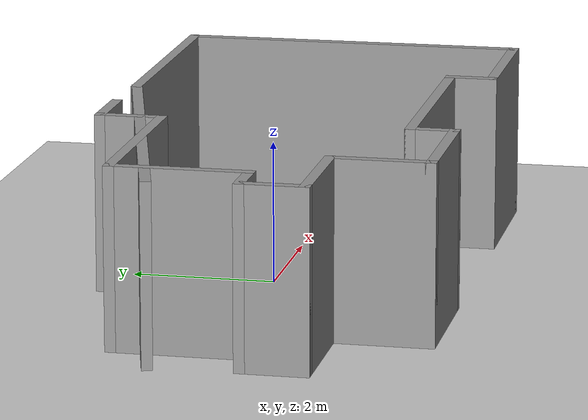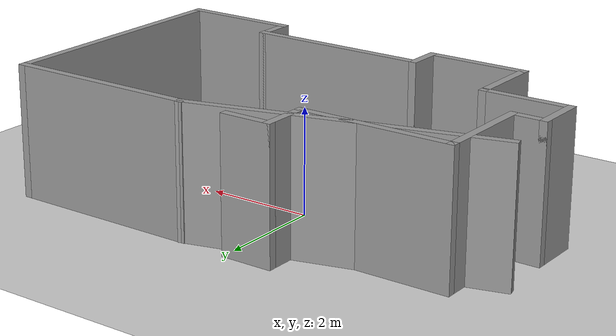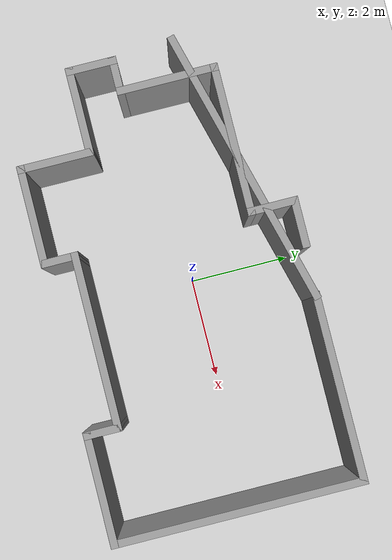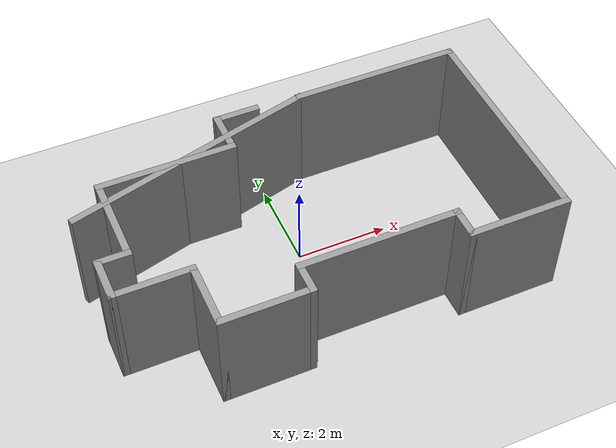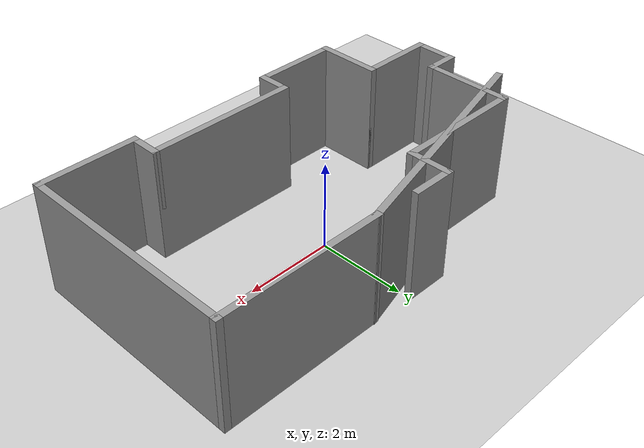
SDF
<sdf version="1.6">
 <world name="default">
  <light name="sun" type="directional">
   <pose>0 0 10 0 -0 0</pose>
   <diffuse>0.8 0.8 0.8 1</diffuse>
   <specular>0.2 0.2 0.2 1</specular>
   <attenuation>
    <range>1000</range>
    <constant>0.9</constant>
    <linear>0.01</linear>
    <quadratic>0.001</quadratic>
   </attenuation>
   <direction>-0.5 0.1 -0.9</direction>
  </light>
  <model name="ground_plane">
   <static>1</static>
   <link name="link">
    <collision name="collision">
     <geometry><plane><normal>0 0 1</normal><size>100 100</size></plane></geometry>
     <surface><friction><ode><mu>100</mu><mu2>50</mu2></ode></friction></surface>
    </collision>
    <visual name="visual">
     <cast_shadows>0</cast_shadows>
     <geometry><plane><normal>0 0 1</normal><size>100 100</size></plane></geometry>
     <material>
      <script><uri>file://media/materials/scripts/gazebo.material</uri><name>Gazebo/Grey</name></script>
     </material>
    </visual>
   </link>
  </model>
  <gravity>0 0 -9.8</gravity>
  <magnetic_field>6e-06 2.3e-05 -4.2e-05</magnetic_field>
  <atmosphere type="adiabatic"/>
  <physics name="default_physics" default="0" type="ode">
   <max_step_size>0.001</max_step_size>
   <real_time_factor>1</real_time_factor>
   <real_time_update_rate>1000</real_time_update_rate>
  </physics>
  <scene><ambient>0.4 0.4 0.4 1</ambient><background>0.7 0.7 0.7 1</background><shadows>1</shadows></scene>
  <spherical_coordinates>
   <surface_model>EARTH_WGS84</surface_model>
   <latitude_deg>0</latitude_deg>
   <longitude_deg>0</longitude_deg>
   <elevation>0</elevation>
   <heading_deg>0</heading_deg>
  </spherical_coordinates>
  <model name="paredes_ok">
   <pose>0.036626 -0.224927 0 0 -0 0</pose>
   <link name="Wall_0">
    <collision name="Wall_0_Collision">
     <geometry><box><size>1 0.15 2.5</size></box></geometry>
     <pose>0 0 1.25 0 -0 0</pose>
    </collision>
    <visual name="Wall_0_Visual">
     <pose>0 0 1.25 0 -0 0</pose>
     <geometry><box><size>1 0.15 2.5</size></box></geometry>
     <material>
      <script><uri>file://media/materials/scripts/gazebo.material</uri><name>Gazebo/Grey</name></script>
      <ambient>1 1 1 1</ambient>
     </material>
     <meta><layer>0</layer></meta>
    </visual>
    <pose>-0.51198 2.45 0 0 -0 3.14159</pose>
   </link>
   <link name="Wall_1">
    <collision name="Wall_1_Collision">
     <geometry><box><size>1 0.15 2.5</size></box></geometry>
     <pose>0 0 1.25 0 -0 0</pose>
    </collision>
    <visual name="Wall_1_Visual">
     <pose>0 0 1.25 0 -0 0</pose>
     <geometry><box><size>1 0.15 2.5</size></box></geometry>
     <material>
      <script><uri>file://media/materials/scripts/gazebo.material</uri><name>Gazebo/Grey</name></script>
      <ambient>1 1 1 1</ambient>
     </material>
     <meta><layer>0</layer></meta>
    </visual>
    <pose>-0.93698 2.025 0 0 0 -1.5708</pose>
   </link>
   <link name="Wall_10">
    <collision name="Wall_10_Collision">
     <geometry><box><size>3.5 0.15 2.5</size></box></geometry>
     <pose>0 0 1.25 0 -0 0</pose>
    </collision>
    <visual name="Wall_10_Visual">
     <pose>0 0 1.25 0 -0 0</pose>
     <geometry><box><size>3.5 0.15 2.5</size></box></geometry>
     <material>
      <script><uri>file://media/materials/scripts/gazebo.material</uri><name>Gazebo/Grey</name></script>
      <ambient>1 1 1 1</ambient>
     </material>
     <meta><layer>0</layer></meta>
    </visual>
    <pose>0.73802 -1.85 0 0 -0 0</pose>
   </link>
   <link name="Wall_11">
    <collision name="Wall_11_Collision">
     <geometry><box><size>0.75 0.15 2.5</size></box></geometry>
     <pose>0 0 1.25 0 -0 0</pose>
    </collision>
    <visual name="Wall_11_Visual">
     <pose>0 0 1.25 0 -0 0</pose>
     <geometry><box><size>0.75 0.15 2.5</size></box></geometry>
     <material>
      <script><uri>file://media/materials/scripts/gazebo.material</uri><name>Gazebo/Grey</name></script>
      <ambient>1 1 1 1</ambient>
     </material>
     <meta><layer>0</layer></meta>
    </visual>
    <pose>2.41302 -2.15 0 0 0 -1.5708</pose>
   </link>
   <link name="Wall_12">
    <collision name="Wall_12_Collision">
     <geometry><box><size>2.25 0.15 2.5</size></box></geometry>
     <pose>0 0 1.25 0 -0 0</pose>
    </collision>
    <visual name="Wall_12_Visual">
     <pose>0 0 1.25 0 -0 0</pose>
     <geometry><box><size>2.25 0.15 2.5</size></box></geometry>
     <material>
      <script><uri>file://media/materials/scripts/gazebo.material</uri><name>Gazebo/Grey</name></script>
      <ambient>1 1 1 1</ambient>
     </material>
     <meta><layer>0</layer></meta>
    </visual>
    <pose>3.46302 -2.45 0 0 -0 0</pose>
   </link>
   <link name="Wall_13">
    <collision name="Wall_13_Collision">
     <geometry><box><size>5 0.15 2.5</size></box></geometry>
     <pose>0 0 1.25 0 -0 0</pose>
    </collision>
    <visual name="Wall_13_Visual">
     <pose>0 0 1.25 0 -0 0</pose>
     <geometry><box><size>5 0.15 2.5</size></box></geometry>
     <material>
      <script><uri>file://media/materials/scripts/gazebo.material</uri><name>Gazebo/Grey</name></script>
      <ambient>1 1 1 1</ambient>
     </material>
     <meta><layer>0</layer></meta>
    </visual>
    <pose>4.51302 -0.025 0 0 -0 1.5708</pose>
   </link>
   <link name="Wall_14">
    <collision name="Wall_14_Collision">
     <geometry><box><size>3.75 0.15 2.5</size></box></geometry>
     <pose>0 0 1.25 0 -0 0</pose>
    </collision>
    <visual name="Wall_14_Visual">
     <pose>0 0 1.25 0 -0 0</pose>
     <geometry><box><size>3.75 0.15 2.5</size></box></geometry>
     <material>
      <script><uri>file://media/materials/scripts/gazebo.material</uri><name>Gazebo/Grey</name></script>
      <ambient>1 1 1 1</ambient>
     </material>
     <meta><layer>0</layer></meta>
    </visual>
    <pose>2.71302 2.4 0 0 -0 3.14159</pose>
   </link>
   <link name="Wall_15">
    <collision name="Wall_15_Collision">
     <geometry><box><size>5.75 0.15 2.5</size></box></geometry>
     <pose>0 0 1.25 0 -0 0</pose>
    </collision>
    <visual name="Wall_15_Visual">
     <pose>0 0 1.25 0 -0 0</pose>
     <geometry><box><size>5.75 0.15 2.5</size></box></geometry>
     <material>
      <script><uri>file://media/materials/scripts/gazebo.material</uri><name>Gazebo/Grey</name></script>
      <ambient>0 0 0 0</ambient>
     </material>
     <meta><layer>0</layer></meta>
    </visual>
    <pose>-1.79157 1.67531 0 0 0 -2.87979</pose>
   </link>
   <link name="Wall_2">
    <collision name="Wall_2_Collision">
     <geometry><box><size>3 0.15 2.5</size></box></geometry>
     <pose>0 0 1.25 0 -0 0</pose>
    </collision>
    <visual name="Wall_2_Visual">
     <pose>0 0 1.25 0 -0 0</pose>
     <geometry><box><size>3 0.15 2.5</size></box></geometry>
     <material>
      <script><uri>file://media/materials/scripts/gazebo.material</uri><name>Gazebo/Grey</name></script>
      <ambient>1 1 1 1</ambient>
     </material>
     <meta><layer>0</layer></meta>
    </visual>
    <pose>-2.36198 1.6 0 0 -0 3.14159</pose>
   </link>
   <link name="Wall_3">
    <collision name="Wall_3_Collision">
     <geometry><box><size>2 0.15 2.5</size></box></geometry>
     <pose>0 0 1.25 0 -0 0</pose>
    </collision>
    <visual name="Wall_3_Visual">
     <pose>0 0 1.25 0 -0 0</pose>
     <geometry><box><size>2 0.15 2.5</size></box></geometry>
     <material>
      <script><uri>file://media/materials/scripts/gazebo.material</uri><name>Gazebo/Grey</name></script>
      <ambient>1 1 1 1</ambient>
     </material>
     <meta><layer>0</layer></meta>
    </visual>
    <pose>-3.78698 0.675 0 0 0 -1.5708</pose>
   </link>
   <link name="Wall_4">
    <collision name="Wall_4_Collision">
     <geometry><box><size>0.75 0.15 2.5</size></box></geometry>
     <pose>0 0 1.25 0 -0 0</pose>
    </collision>
    <visual name="Wall_4_Visual">
     <pose>0 0 1.25 0 -0 0</pose>
     <geometry><box><size>0.75 0.15 2.5</size></box></geometry>
     <material>
      <script><uri>file://media/materials/scripts/gazebo.material</uri><name>Gazebo/Grey</name></script>
      <ambient>1 1 1 1</ambient>
     </material>
     <meta><layer>0</layer></meta>
    </visual>
    <pose>-4.08698 -0.25 0 0 -0 3.14159</pose>
   </link>
   <link name="Wall_5">
    <collision name="Wall_5_Collision">
     <geometry><box><size>1 0.15 2.5</size></box></geometry>
     <pose>0 0 1.25 0 -0 0</pose>
    </collision>
    <visual name="Wall_5_Visual">
     <pose>0 0 1.25 0 -0 0</pose>
     <geometry><box><size>1 0.15 2.5</size></box></geometry>
     <material>
      <script><uri>file://media/materials/scripts/gazebo.material</uri><name>Gazebo/Grey</name></script>
      <ambient>1 1 1 1</ambient>
     </material>
     <meta><layer>0</layer></meta>
    </visual>
    <pose>-4.38698 -0.675 0 0 0 -1.5708</pose>
   </link>
   <link name="Wall_6">
    <collision name="Wall_6_Collision">
     <geometry><box><size>1.75 0.15 2.5</size></box></geometry>
     <pose>0 0 1.25 0 -0 0</pose>
    </collision>
    <visual name="Wall_6_Visual">
     <pose>0 0 1.25 0 -0 0</pose>
     <geometry><box><size>1.75 0.15 2.5</size></box></geometry>
     <material>
      <script><uri>file://media/materials/scripts/gazebo.material</uri><name>Gazebo/Grey</name></script>
      <ambient>1 1 1 1</ambient>
     </material>
     <meta><layer>0</layer></meta>
    </visual>
    <pose>-3.58698 -1.1 0 0 -0 0</pose>
   </link>
   <link name="Wall_7">
    <collision name="Wall_7_Collision">
     <geometry><box><size>1.5 0.15 2.5</size></box></geometry>
     <pose>0 0 1.25 0 -0 0</pose>
    </collision>
    <visual name="Wall_7_Visual">
     <pose>0 0 1.25 0 -0 0</pose>
     <geometry><box><size>1.5 0.15 2.5</size></box></geometry>
     <material>
      <script><uri>file://media/materials/scripts/gazebo.material</uri><name>Gazebo/Grey</name></script>
      <ambient>1 1 1 1</ambient>
     </material>
     <meta><layer>0</layer></meta>
    </visual>
    <pose>-2.78698 -1.775 0 0 0 -1.5708</pose>
   </link>
   <link name="Wall_8">
    <collision name="Wall_8_Collision">
     <geometry><box><size>2 0.15 2.5</size></box></geometry>
     <pose>0 0 1.25 0 -0 0</pose>
    </collision>
    <visual name="Wall_8_Visual">
     <pose>0 0 1.25 0 -0 0</pose>
     <geometry><box><size>2 0.15 2.5</size></box></geometry>
     <material>
      <script><uri>file://media/materials/scripts/gazebo.material</uri><name>Gazebo/Grey</name></script>
      <ambient>1 1 1 1</ambient>
     </material>
     <meta><layer>0</layer></meta>
    </visual>
    <pose>-1.86198 -2.45 0 0 -0 0</pose>
   </link>
   <link name="Wall_9">
    <collision name="Wall_9_Collision">
     <geometry><box><size>0.75 0.15 2.5</size></box></geometry>
     <pose>0 0 1.25 0 -0 0</pose>
    </collision>
    <visual name="Wall_9_Visual">
     <pose>0 0 1.25 0 -0 0</pose>
     <geometry><box><size>0.75 0.15 2.5</size></box></geometry>
     <material>
      <script><uri>file://media/materials/scripts/gazebo.material</uri><name>Gazebo/Grey</name></script>
      <ambient>1 1 1 1</ambient>
     </material>
     <meta><layer>0</layer></meta>
    </visual>
    <pose>-0.93698 -2.15 0 0 -0 1.5708</pose>
   </link>
   <static>1</static>
  </model>
 </world>
</sdf>
